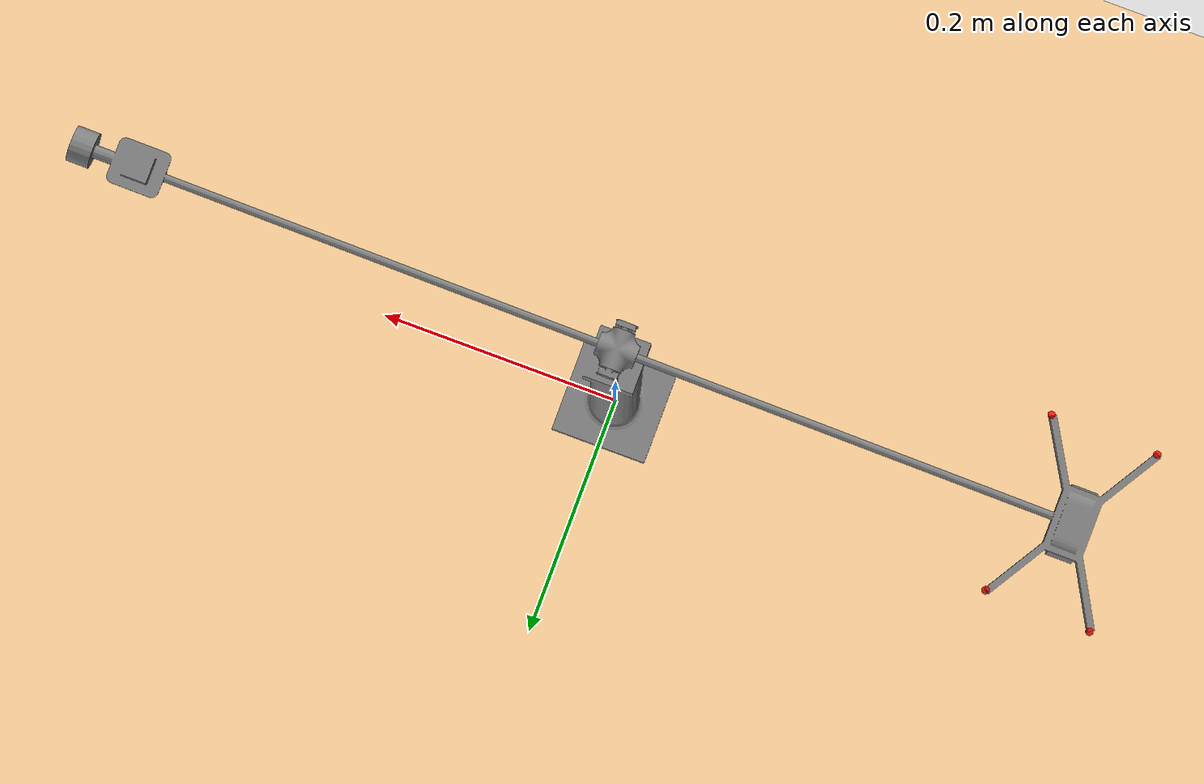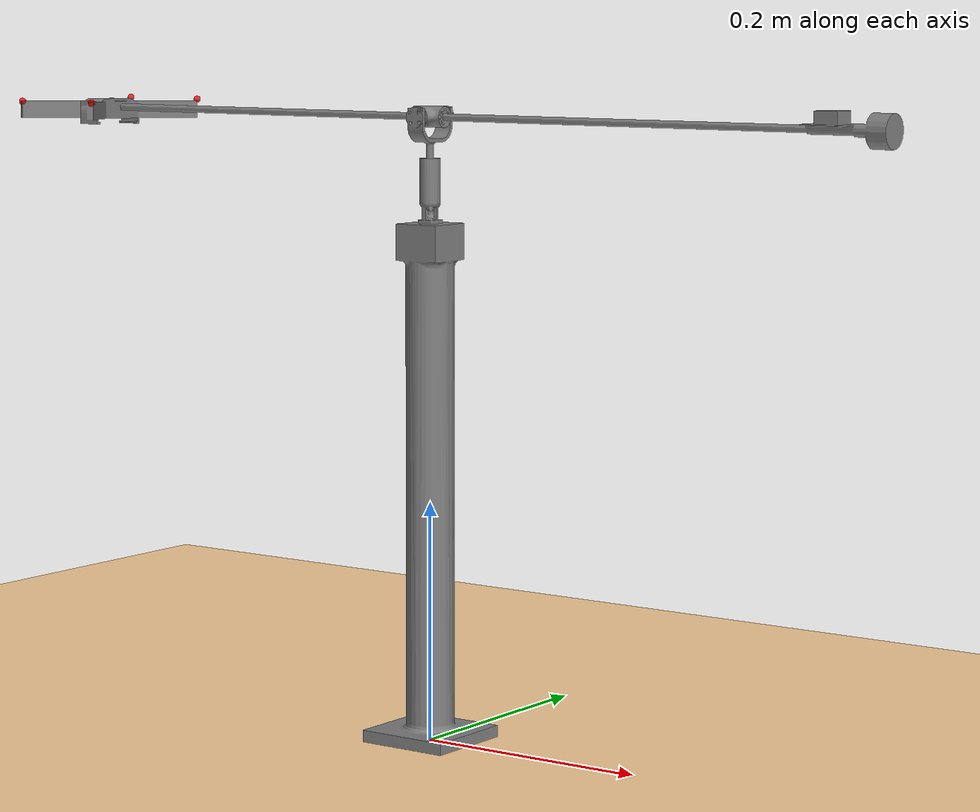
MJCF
<mujoco model="3DOF_gimbal_drone">
  <compiler angle="radian" meshdir="updated_meshes"/>
  <option timestep="0.0002">
    <flag contact="disable"/>
  </option>

  <asset>
    <mesh name="base"  file="Loadcell_and_Stand_Foot.STL"             scale="0.001 0.001 0.001"/>
    <mesh name="yaw"   file="BallBearings_YawSupport_UJholder.STL"    scale="0.001 0.001 0.001"/>
    <mesh name="pitch" file="BallBearings_UniJoint.STL"               scale="0.001 0.001 0.001"/>
    <mesh name="roll"  file="CarbonRod_Counter_Holder_IMU_Drone.STL"  scale="0.001 0.001 0.001"/>
  </asset>

  <worldbody>
    <light directional="true" pos="0 0 2" dir="0 0 -1"/>
    <geom type="plane" size="2 2 1" rgba="1 0.83 0.61 0.5"/>

    <body name="LoadCell" pos="0 0 0" euler="0 0 0">
      <inertial mass="1e-6" pos="0 0 0" fullinertia="1e-9 1e-9 1e-9 0 0 0"/>
      <site name="loadcell_site" pos="0 0 0"/>

      <!-- ============= BASE (fixed to world, 0.609 kg) ============= -->
      <body name="Base" pos="0 0 0" euler="0 0 0">
        <inertial mass="0.60870"
                  pos="0.00048 0 0.20269"
                  fullinertia="1.13674e-2 1.13675e-2 1.79870e-4 0 2.6671e-5 0"/>
        <geom type="mesh" mesh="base"/>

        <!-- ============= YAW (vertical hinge, 0.0064 kg) ============= -->
        <body name="Yaw" pos="0 0 0" euler="0 0 0">
          <joint name="yaw_joint" type="hinge"
                 axis="0 0 1"
                 pos="0 0 0.35"
                 damping="0.005"
                 frictionloss="0.001"/>
          <inertial mass="0.00640"
                    pos="0.00118 0 0.49509"
                    fullinertia="3.88007e-6 2.94238e-6 1.10815e-6 8.49e-9 6.61e-9 -2e-11"/>
          <geom type="mesh" mesh="yaw"/>

          <!-- ============= PITCH (horizontal hinge, 0.0082 kg) ============= -->
          <body name="Pitch" pos="0 0 0" euler="0 0 0">
            <joint name="pitch_joint" type="hinge"
                   axis="0 1 0"
                   pos="0 0 0.5165"
                   limited="true" range="-0.5236 0.5236"
                   damping="0.02"
                   frictionloss="0.001"/>
            <inertial mass="0.00821"
                      pos="0.00123 0 0.51650"
                      fullinertia="6.7246e-7 6.6663e-7 9.5838e-7 5e-11 -1.58e-9 1e-11"/>
            <geom type="mesh" mesh="pitch"/>

            <!-- ============= ROLL + DRONE (0.079 kg) ============= -->
            <body name="Roll" pos="0 0 0" euler="0 0 0">
              <joint name="roll_joint" type="hinge"
                     axis="1 0 0"
                     pos="0 0 0.5165"
                     limited="true" range="-1.0472 1.0472"
                     damping="0.004"
                     frictionloss="0.001"/>
              <inertial mass="0.07905"
                        pos="-0.09961 0.00091 0.51647"
                        fullinertia="4.457e-5 8.4295e-3 8.4704e-3 -7.5814e-5 -4.849e-6 -5.670e-7"/>
              <geom type="mesh" mesh="roll"/>

              <!-- MOTOR SITES — measured in MJ_CS. All four at same Z. -->
              <site name="motor1" pos="-0.31143 -0.06496 0.52298" size="0.003" rgba="1 0 0 0.8"/>
              <site name="motor2" pos="-0.39079  0.07272 0.52298" size="0.003" rgba="1 0 0 0.8"/>
              <site name="motor3" pos="-0.31021  0.07077 0.52298" size="0.003" rgba="1 0 0 0.8"/>
              <site name="motor4" pos="-0.39296 -0.06445 0.52298" size="0.003" rgba="1 0 0 0.8"/>
            </body>
          </body>
        </body>
      </body>
    </body>
  </worldbody>

  <sensor>
    <force name="loadcell_force" site="loadcell_site"/>
  </sensor>

  <actuator>
    <motor name="motor1" site="motor1" gear="0 0 1 0 0 0" ctrlrange="0 0.3"/>
    <motor name="motor2" site="motor2" gear="0 0 1 0 0 0" ctrlrange="0 0.3"/>
    <motor name="motor3" site="motor3" gear="0 0 1 0 0 0" ctrlrange="0 0.3"/>
    <motor name="motor4" site="motor4" gear="0 0 1 0 0 0" ctrlrange="0 0.3"/>
  </actuator>

  <keyframe>
    <key name="home" qpos="0 0 0"/>
  </keyframe>
</mujoco>
